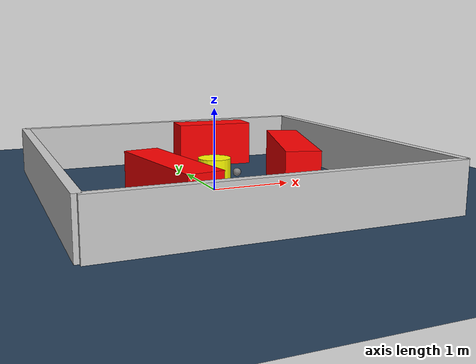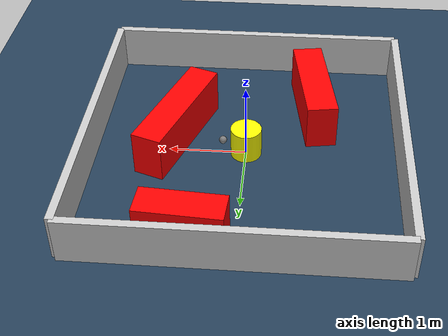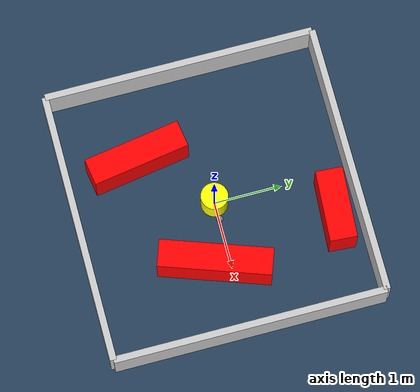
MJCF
<?xml version="1.0" ?>
<mujoco model="generated_environment">
  <option timestep="0.01" integrator="RK4" cone="elliptic"/>
  <default>
    <geom density="1"/>
  </default>
  <asset>
    <texture builtin="gradient" height="3072" rgb1="0.3 0.5 0.7" rgb2="0 0 0" type="skybox" width="512"/>
    <texture builtin="checker" height="300" mark="edge" markrgb="0.8 0.8 0.8" name="groundplane" rgb1="0.2 0.3 0.4" rgb2="0.1 0.2 0.3" type="2d" width="300"/>
    <material name="groundplane" reflectance="0.2" texrepeat="5 5" texture="groundplane" texuniform="true"/>
    <material name="robot" rgba="0.0 1.0 0.0 1"/>
  </asset>
  <worldbody>
    <light dir="0 0 -1" directional="true" pos="0 0 1.5"/>
    <geom condim="4" friction="1.0 0.005 0.001" material="groundplane" name="floor" size="0 0 0.05" type="plane"/>
    <body name="walls">
      <geom name="wall_1" condim="4" pos="-2.0 0.0 0.3" rgba="0.800000011920929 0.800000011920929 0.800000011920929 1.0" size="0.05 2.0 0.3" type="box"/>
      <geom name="wall_2" condim="4" pos="2.0 0.0 0.3" rgba="0.800000011920929 0.800000011920929 0.800000011920929 1.0" size="0.05 2.0 0.3" type="box"/>
      <geom name="wall_3" condim="4" pos="0.0 -2.0 0.3" rgba="0.800000011920929 0.800000011920929 0.800000011920929 1.0" size="2.0 0.05 0.3" type="box"/>
      <geom name="wall_4" condim="4" pos="0.0 2.0 0.3" rgba="0.800000011920929 0.800000011920929 0.800000011920929 1.0" size="2.0 0.05 0.3" type="box"/>
    </body>
    <body name="robot">
      <joint name="joint_x" type="slide" pos="0 0 0" axis="1 0 0"/>
      <joint name="joint_y" type="slide" pos="0 0 0" axis="0 1 0"/>
      <geom name="robot" type="sphere" pos="0.3 0.0 0.2" size="0.05" mass="5." friction="1.0 0.005 0.0001" condim="4" rgba="0.5 0.5 0.5 1.0"/>
      <site name="sensor_ball"/>
    </body>
    <body name="obstacle_movable_1">
      <geom name="obstacle_movable_1" condim="4" pos="0.0 0.0 0.2" euler="0 0 0.0" friction="1.0 0.005 0.001" rgba="1.0 1.0 0.0 1.0" size="0.2 0.2 0.0" type="cylinder" mass="0.1"/>
      <joint type="free"/>
    </body>
    <body name="obstacle_2_static">
      <geom name="obstacle_2_static" condim="4" pos="-0.8597430391081392 -0.9292295379032893 0.3" euler="0 0 279.104290321354" friction="1.0 0.005 0.001" rgba="1 0 0 1" size="0.7245842185847169 0.2 0.3" type="box"/>
    </body>
    <body name="obstacle_3_static">
      <geom name="obstacle_3_static" condim="4" pos="0.6122176027229367 1.6377493419881943 0.3" euler="0 0 176.2242132403041" friction="1.0 0.005 0.001" rgba="1 0 0 1" size="0.5256418529745925 0.2 0.3" type="box"/>
    </body>
    <body name="obstacle_4_static">
      <geom name="obstacle_4_static" condim="4" pos="0.9261541827801965 -0.23002547721646316 0.3" euler="0 0 70.61103632431052" friction="1.0 0.005 0.001" rgba="1 0 0 1" size="0.8216777659150594 0.2 0.3" type="box"/>
    </body>
  </worldbody>
  <actuator>
    <motor name="actuator_x" joint="joint_x" gear="1" ctrlrange="-1 1"/>
    <motor name="actuator_y" joint="joint_y" gear="1" ctrlrange="-1 1"/>
  </actuator>
</mujoco>
